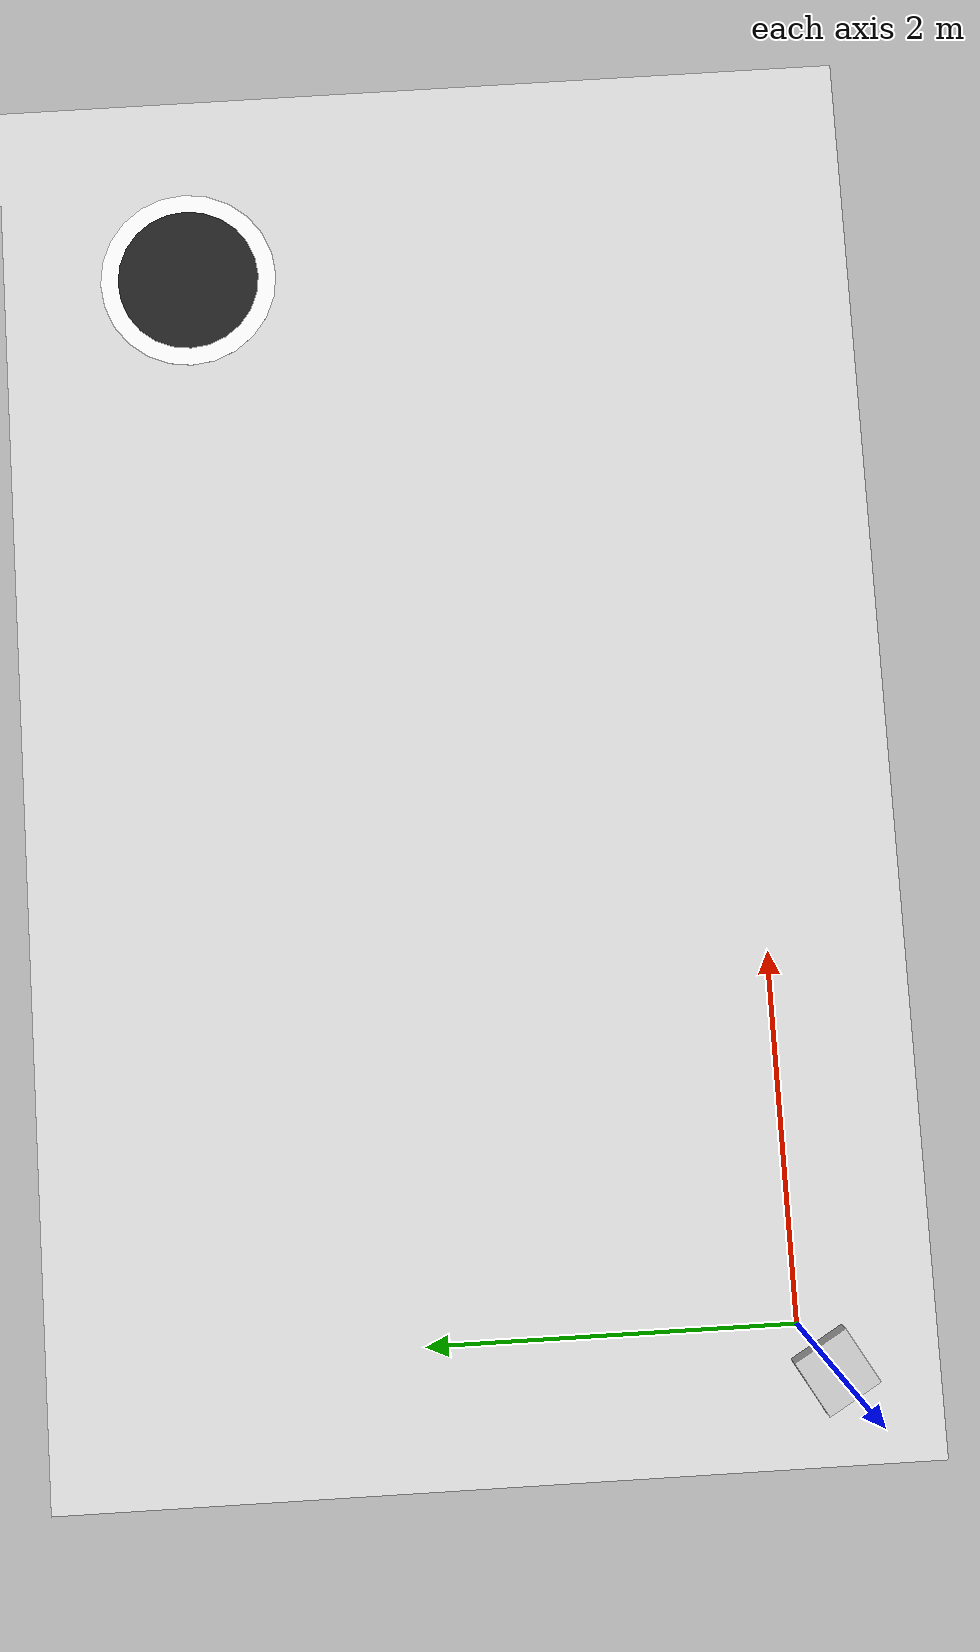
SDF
<?xml version="1.0" ?>
<sdf version="1.5">
  <world name="default">

    <!-- A global light source -->
    <scene>
	<ambient>0.5 0.5 0.5 1.0</ambient>
	<shadows>true</shadows>
    </scene>

    <include>
      <uri>model://sun</uri>
    </include>

    <!-- A ground plane -->
    <include>
      <uri>model://ground_plane</uri>
    </include>

    <!-- Coordinates -->
    <spherical_coordinates>
      <surface_model>EARTH_WGS84</surface_model>
      <latitude_deg>0</latitude_deg>
      <longitude_deg>0</longitude_deg>
      <elevation>0</elevation>
      <heading_deg>0</heading_deg>
    </spherical_coordinates>

    <!-- Camera -->
     <gui fullscreen='0'>
      <camera name='user_camera'>
        <pose>7.8971 -5.86361 6.86576 0 0.507643 2.3202</pose>
        <view_controller>orbit</view_controller>
        <projection_type>perspective</projection_type>
      </camera>
    </gui>

    <!-- Drone -->
    <include>
      <name>abejorro</name>
      <uri>model://drone</uri>
      <pose>0 0 1 0 0 -1.0472</pose>
      <plugin name="model_push" filename="/opt/ros/jade/share/drone_gazebo/plugins/build/libmodel_push.so">
      </plugin>
    </include>

    <!-- Other objects -->

    <model name='target'>
      <pose>6 3 0 0 0 0</pose>
      <static>true</static>
      <link name='link'>
        <collision name='collision'>
          <pose>0 0 0.001 0 0 0</pose>
          <geometry>
            <cylinder>
              <radius>0.50</radius>
              <length>0.002</length>
            </cylinder>
          </geometry>
          <max_contacts>10</max_contacts>
          <surface>
            <contact>
              <ode/>
            </contact>
            <bounce/>
            <friction>
              <ode/>
            </friction>
          </surface>
        </collision>
        <visual name='circulo_blanco'>
          <pose>0 0 0.0005 0 0 0</pose>
          <geometry>
            <cylinder>
              <radius>0.50</radius>
              <length>0.001</length>
            </cylinder>
          </geometry>
          <material>
            <script>
              <name>Gazebo/White</name>
              <uri>file://media/materials/scripts/gazebo.material</uri>
            </script>
          </material>
        </visual>
        <visual name='circulo_negro'>
          <pose>0 0 0.0015 0 0 0</pose>
          <geometry>
            <cylinder>
              <radius>0.40</radius>
              <length>0.001</length>
            </cylinder>
          </geometry>
          <material>
            <script>
              <name>Gazebo/Black</name>
              <uri>file://media/materials/scripts/gazebo.material</uri>
            </script>
          </material>
        </visual>
      </link>
    </model>

  </world>
</sdf>

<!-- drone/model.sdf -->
<sdf version="1.9">
  <model name="drone">
    <pose>0 0 0.5 0 0 0</pose>
    <link name="base_link">
      <inertial>
        <mass>1.0</mass>
        <inertia>
          <ixx>0.002</ixx><iyy>0.002</iyy><izz>0.003</izz>
          <ixy>0</ixy><ixz>0</ixz><iyz>0</iyz>
        </inertia>
      </inertial>
      <collision name="col">
        <geometry><box><size>0.3 0.3 0.1</size></box></geometry>
      </collision>
      <visual name="vis">
        <geometry><box><size>0.3 0.3 0.1</size></box></geometry>
      </visual>
    </link>

    <plugin name="lin_vel" filename="gz-sim-linear-velocity-control-system">
      <topic>/model/drone/cmd_vel</topic>
      <use_world_frame>false</use_world_frame>
      <limit>3.0</limit>
    </plugin>
    <plugin name="ang_vel" filename="gz-sim-angular-velocity-control-system">
      <topic>/model/drone/cmd_vel</topic>
      <use_world_frame>false</use_world_frame>
      <limit>2.0</limit>
    </plugin>
    <plugin name="odom_pub" filename="gz-sim-odometry-publisher-system">
      <frame_id>world</frame_id>
      <child_frame_id>drone/base_link</child_frame_id>
      <topic>/model/drone/odometry</topic>
      <publish_velocity>true</publish_velocity>
    </plugin>
  </model>
</sdf>
